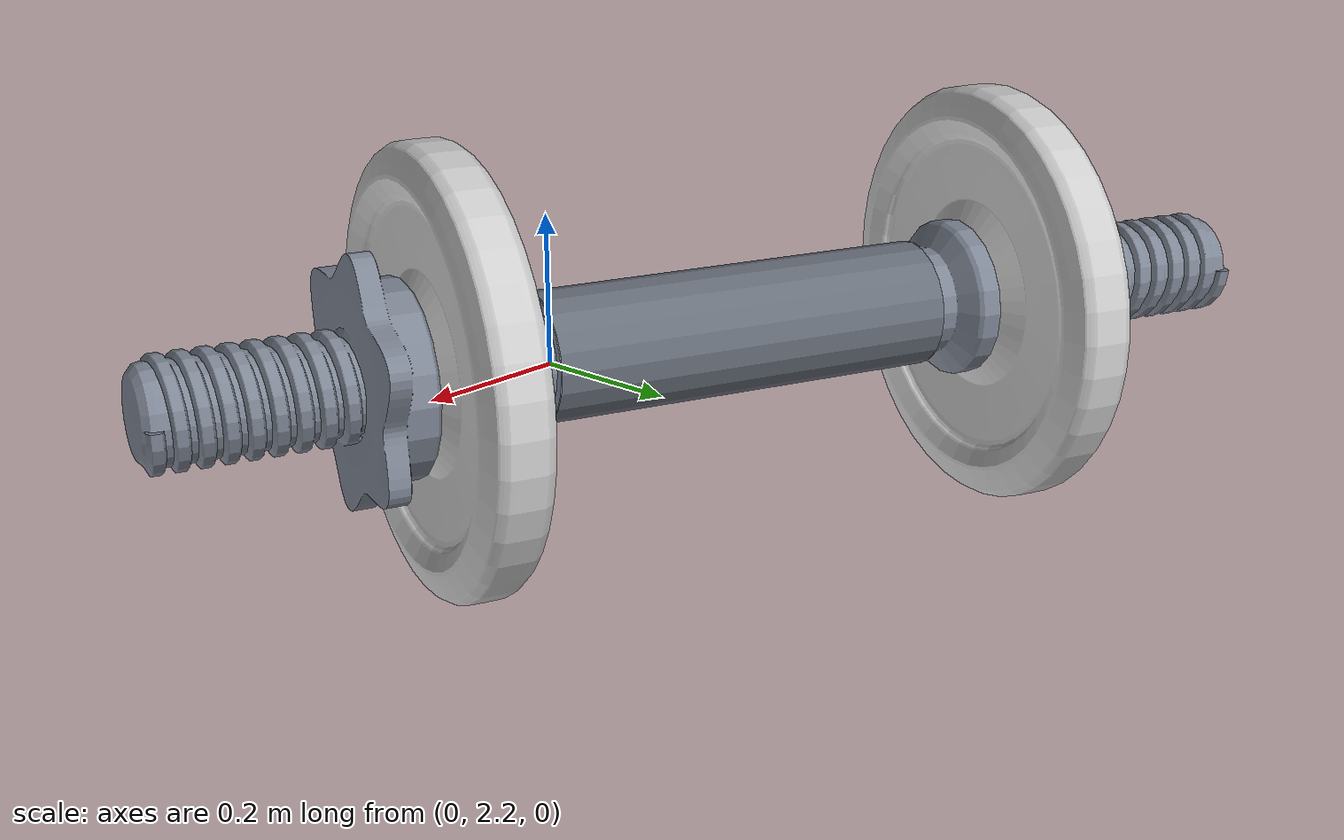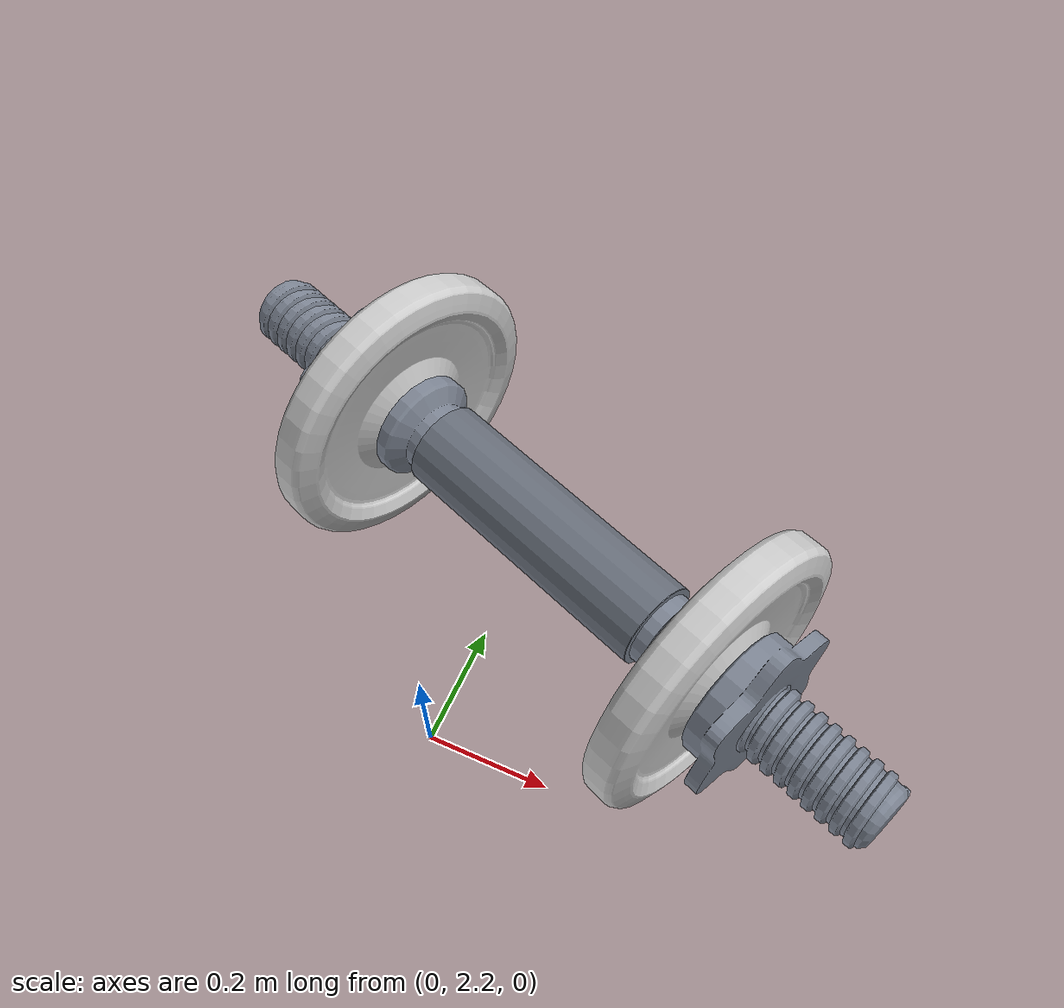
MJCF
<mujoco model="weight_4">
  <compiler angle="radian" meshdir="assets" texturedir="assets" autolimits="true"/>
  <default>
    <default class="visual">
      <geom group="2" type="mesh" contype="0" conaffinity="0"/>
    </default>
    <default class="collision">
      <geom group="3" type="mesh"  solimp="0.95 0.99 0.001" solref="0.004 1" friction="1.0 0.005 0.0001"/>
    </default>
  </default>
  <asset>
    <material name="Metal_black" specular="0.5" shininess="0.36" rgba="0.800000 0.800000 0.800000 1.000000"/>
    <material name="Stainless_Steel" specular="0.5" shininess="0.7225" rgba="0.492784 0.524263 0.580810 1.000000"/>
    <material name="Stainless_Steel_grip" specular="0.5" shininess="0.49" rgba="0.407240 0.433089 0.479510 1.000000"/>
    <mesh file="weight_4_0.obj"/>
    <mesh file="weight_4_1.obj"/>
    <mesh file="weight_4_2.obj"/>
    <mesh file="weight_4_collision_0.obj"/>
    <mesh file="weight_4_collision_1.obj"/>
    <mesh file="weight_4_collision_2.obj"/>
    <mesh file="weight_4_collision_3.obj"/>
    <mesh file="weight_4_collision_4.obj"/>
    <mesh file="weight_4_collision_5.obj"/>
    <mesh file="weight_4_collision_6.obj"/>
    <mesh file="weight_4_collision_7.obj"/>
    <mesh file="weight_4_collision_8.obj"/>
    <mesh file="weight_4_collision_9.obj"/>
    <mesh file="weight_4_collision_10.obj"/>
    <mesh file="weight_4_collision_11.obj"/>
    <mesh file="weight_4_collision_12.obj"/>
    <mesh file="weight_4_collision_13.obj"/>
    <mesh file="weight_4_collision_14.obj"/>
    <mesh file="weight_4_collision_15.obj"/>
    <mesh file="weight_4_collision_16.obj"/>
    <mesh file="weight_4_collision_17.obj"/>
    <mesh file="weight_4_collision_18.obj"/>
    <mesh file="weight_4_collision_19.obj"/>
    <mesh file="weight_4_collision_20.obj"/>
    <mesh file="weight_4_collision_21.obj"/>
    <mesh file="weight_4_collision_22.obj"/>
    <mesh file="weight_4_collision_23.obj"/>
    <mesh file="weight_4_collision_24.obj"/>
    <mesh file="weight_4_collision_25.obj"/>
    <mesh file="weight_4_collision_26.obj"/>
    <mesh file="weight_4_collision_27.obj"/>
    <mesh file="weight_4_collision_28.obj"/>
    <mesh file="weight_4_collision_29.obj"/>
    <mesh file="weight_4_collision_30.obj"/>
    <mesh file="weight_4_collision_31.obj"/>
    <mesh file="weight_4_collision_32.obj"/>
    <mesh file="weight_4_collision_33.obj"/>
    <mesh file="weight_4_collision_34.obj"/>
    <mesh file="weight_4_collision_35.obj"/>
    <mesh file="weight_4_collision_36.obj"/>
    <mesh file="weight_4_collision_37.obj"/>
    <mesh file="weight_4_collision_38.obj"/>
    <mesh file="weight_4_collision_39.obj"/>
    <mesh file="weight_4_collision_40.obj"/>
    <mesh file="weight_4_collision_41.obj"/>
    <mesh file="weight_4_collision_42.obj"/>
    <mesh file="weight_4_collision_43.obj"/>
    <mesh file="weight_4_collision_44.obj"/>
    <mesh file="weight_4_collision_45.obj"/>
  </asset>
  <worldbody>
    <body name="weight_4">
      <geom mesh="weight_4_0" material="Stainless_Steel_grip" class="visual"/>
      <geom mesh="weight_4_1" material="Metal_black" class="visual"/>
      <geom mesh="weight_4_2" material="Stainless_Steel" class="visual"/>
      <geom mesh="weight_4_collision_0" rgba="0.4744364123675717 0.6035112595930195 0.02932073882259223 1" class="collision"/>
      <geom mesh="weight_4_collision_1" rgba="0.5265231512022541 0.9295343067975953 0.24940672153282994 1" class="collision"/>
      <geom mesh="weight_4_collision_2" rgba="0.588643757241654 0.44606652285165105 0.9944663531575544 1" class="collision"/>
      <geom mesh="weight_4_collision_3" rgba="0.07151667917093418 0.8017844260509497 0.21408513015892616 1" class="collision"/>
      <geom mesh="weight_4_collision_4" rgba="0.40694325821429633 0.7451827877242013 0.5726863513268217 1" class="collision"/>
      <geom mesh="weight_4_collision_5" rgba="0.33943081494294924 0.256888530981343 0.983994087463848 1" class="collision"/>
      <geom mesh="weight_4_collision_6" rgba="0.8761669480626658 0.283168268895441 0.9333011345553168 1" class="collision"/>
      <geom mesh="weight_4_collision_7" rgba="0.33536638801161567 0.22795382942663078 0.4743385921919462 1" class="collision"/>
      <geom mesh="weight_4_collision_8" rgba="0.3142996884952832 0.17755034046741636 0.6570738401369164 1" class="collision"/>
      <geom mesh="weight_4_collision_9" rgba="0.8687449944892515 0.3394174216621808 0.434840056753412 1" class="collision"/>
      <geom mesh="weight_4_collision_10" rgba="0.4569850629980966 0.6709812205558079 0.22976391518054706 1" class="collision"/>
      <geom mesh="weight_4_collision_11" rgba="0.48250518209703064 0.6015852993893399 0.30889761930673354 1" class="collision"/>
      <geom mesh="weight_4_collision_12" rgba="0.524312871098899 0.5904814180030352 0.8408734719007479 1" class="collision"/>
      <geom mesh="weight_4_collision_13" rgba="0.32524256187929057 0.9483309546355321 0.8254337023302342 1" class="collision"/>
      <geom mesh="weight_4_collision_14" rgba="0.6238172665304479 0.8954808410479131 0.5389983037367825 1" class="collision"/>
      <geom mesh="weight_4_collision_15" rgba="0.49853554576054004 0.5194500724453475 0.821132753043404 1" class="collision"/>
      <geom mesh="weight_4_collision_16" rgba="0.6043505622829323 0.4130997097082124 0.1302976841550877 1" class="collision"/>
      <geom mesh="weight_4_collision_17" rgba="0.5193233220241243 0.5455377031628338 0.35494649255080013 1" class="collision"/>
      <geom mesh="weight_4_collision_18" rgba="0.8105151362835984 0.5517987795919647 0.21510957501468186 1" class="collision"/>
      <geom mesh="weight_4_collision_19" rgba="0.31561673069608864 0.7130584150159155 0.7959676481420394 1" class="collision"/>
      <geom mesh="weight_4_collision_20" rgba="0.8590163899284381 0.5815306808405082 0.6850365608484889 1" class="collision"/>
      <geom mesh="weight_4_collision_21" rgba="0.6942639477414603 0.5954949578482186 0.9710989673915565 1" class="collision"/>
      <geom mesh="weight_4_collision_22" rgba="0.4002404017490083 0.06560955094497478 0.6002537850091003 1" class="collision"/>
      <geom mesh="weight_4_collision_23" rgba="0.5995138475101637 0.920067321580255 0.11465248669254258 1" class="collision"/>
      <geom mesh="weight_4_collision_24" rgba="0.6486190094469374 0.28712603024687655 0.9476125792925487 1" class="collision"/>
      <geom mesh="weight_4_collision_25" rgba="0.7458599337467186 0.3506706871719437 0.8030841416361236 1" class="collision"/>
      <geom mesh="weight_4_collision_26" rgba="0.2740157231901409 0.7809369257733487 0.47991541946790595 1" class="collision"/>
      <geom mesh="weight_4_collision_27" rgba="0.4359272675884943 0.4775568015767042 0.606350230838425 1" class="collision"/>
      <geom mesh="weight_4_collision_28" rgba="0.0475250075430379 0.8998279227453773 0.1499562929285213 1" class="collision"/>
      <geom mesh="weight_4_collision_29" rgba="0.5131715205009142 0.3019806815463739 0.025500863639437377 1" class="collision"/>
      <geom mesh="weight_4_collision_30" rgba="0.7388814351651906 0.2930228001109719 0.09448171514562842 1" class="collision"/>
      <geom mesh="weight_4_collision_31" rgba="0.6283526427915329 0.6775199315189014 0.05716733056897094 1" class="collision"/>
      <geom mesh="weight_4_collision_32" rgba="0.05003848014260337 0.48238436536613827 0.48018653270601563 1" class="collision"/>
      <geom mesh="weight_4_collision_33" rgba="0.6584110489483038 0.8002615209648026 0.7965352791680841 1" class="collision"/>
      <geom mesh="weight_4_collision_34" rgba="0.8855453162026631 0.10872200149755118 0.6154936788692973 1" class="collision"/>
      <geom mesh="weight_4_collision_35" rgba="0.8706913556487674 0.5308512727571036 0.803128591031551 1" class="collision"/>
      <geom mesh="weight_4_collision_36" rgba="0.9617242082855318 0.9883113244245114 0.9316005040475976 1" class="collision"/>
      <geom mesh="weight_4_collision_37" rgba="0.18326456013082126 0.8548930740621207 0.18759961867905617 1" class="collision"/>
      <geom mesh="weight_4_collision_38" rgba="0.13503958038769537 0.023956758424684144 0.40789231453939057 1" class="collision"/>
      <geom mesh="weight_4_collision_39" rgba="0.8721608891066376 0.6855855729734741 0.9649640120175363 1" class="collision"/>
      <geom mesh="weight_4_collision_40" rgba="0.5105651139882794 0.8214205718957089 0.11584618496600585 1" class="collision"/>
      <geom mesh="weight_4_collision_41" rgba="0.12072664843652703 0.20452706233664175 0.1365976356891051 1" class="collision"/>
      <geom mesh="weight_4_collision_42" rgba="0.8443031823016159 0.839295900226839 0.8462691956519512 1" class="collision"/>
      <geom mesh="weight_4_collision_43" rgba="0.3962599980005034 0.6559893476564754 0.06838755225417237 1" class="collision"/>
      <geom mesh="weight_4_collision_44" rgba="0.7445588782507564 0.09858517276735845 0.9626626245316506 1" class="collision"/>
      <geom mesh="weight_4_collision_45" rgba="0.49999600936345956 0.05663436907752739 0.25502645835200954 1" class="collision"/>
    </body>
  </worldbody>
</mujoco>
